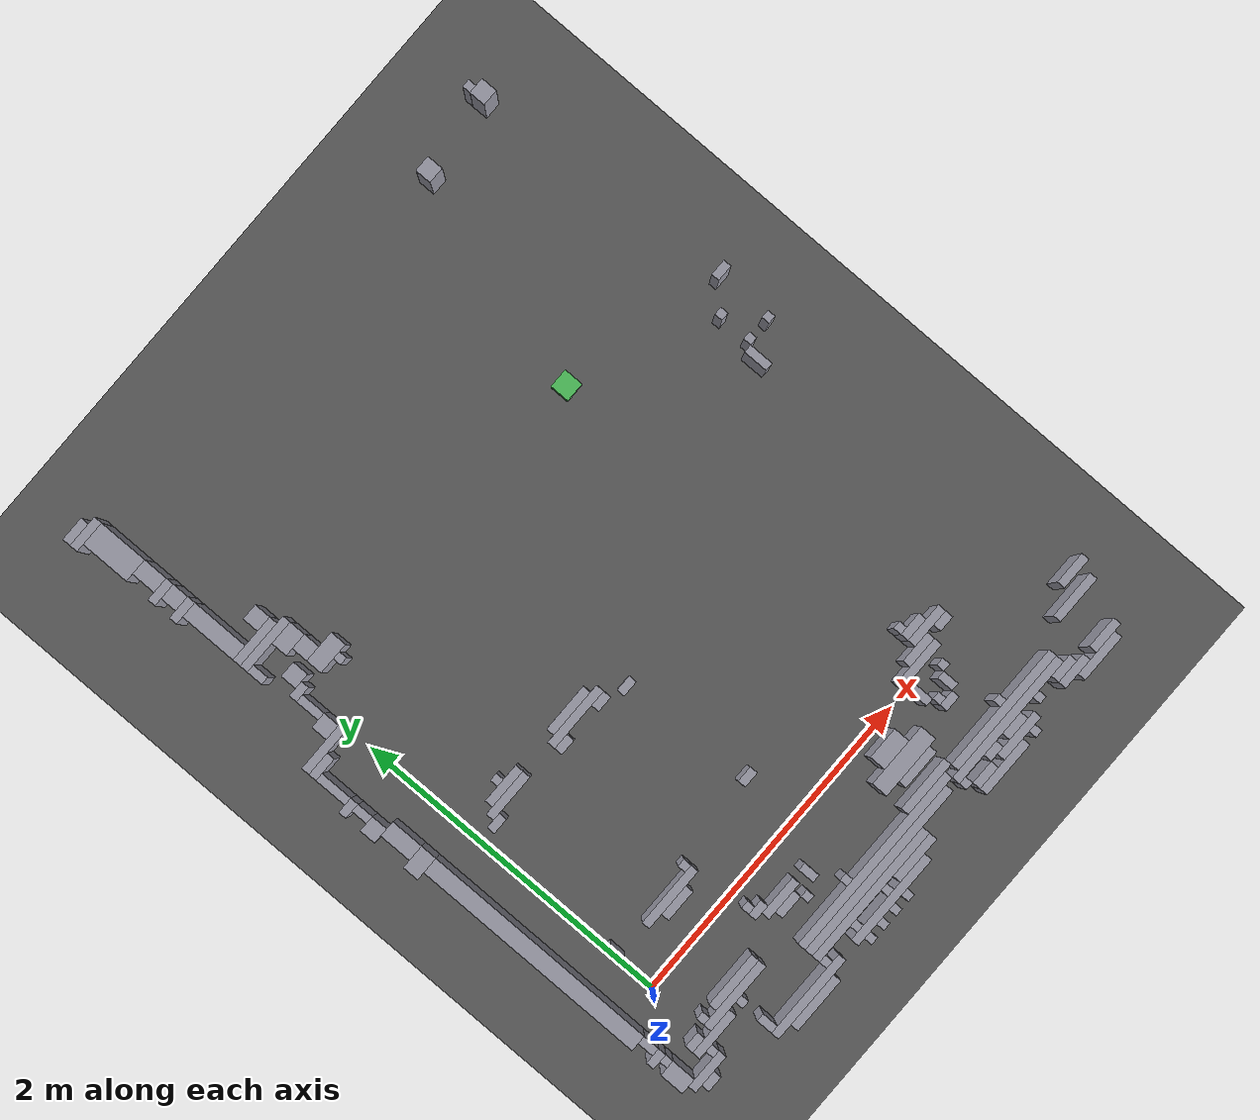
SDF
<sdf version="1.8">
 <world name="dimi">
  <model name="ground">
   <static>true</static>
   <link name="ground_link">
    <collision name="c"><geometry><plane><normal>0 0 1</normal><size>60 60</size></plane></geometry></collision>
    <visual name="v">
     <geometry><plane><normal>0 0 1</normal><size>60 60</size></plane></geometry>
     <material><ambient>0.3 0.3 0.3 1</ambient><diffuse>0.35 0.35 0.35 1</diffuse></material>
    </visual>
   </link>
  </model>
  <model name="walls">
   <static>true</static>
   <link name="wall_468">
    <pose>-0.1220 3.9170 0.5000 0 0 0</pose>
    <collision name="c"><geometry><box><size>0.1500 0.0500 1.0000</size></box></geometry></collision>
    <visual name="v">
     <geometry><box><size>0.1500 0.0500 1.0000</size></box></geometry>
     <material><ambient>0.5 0.5 0.55 1</ambient><diffuse>0.6 0.6 0.65 1</diffuse></material>
    </visual>
   </link>
   <link name="wall_476">
    <pose>-0.0970 3.8670 0.5000 0 0 0</pose>
    <collision name="c"><geometry><box><size>0.2000 0.0500 1.0000</size></box></geometry></collision>
    <visual name="v">
     <geometry><box><size>0.2000 0.0500 1.0000</size></box></geometry>
     <material><ambient>0.5 0.5 0.55 1</ambient><diffuse>0.6 0.6 0.65 1</diffuse></material>
    </visual>
   </link>
   <link name="wall_477">
    <pose>3.0280 3.8670 0.5000 0 0 0</pose>
    <collision name="c"><geometry><box><size>0.0500 0.0500 1.0000</size></box></geometry></collision>
    <visual name="v">
     <geometry><box><size>0.0500 0.0500 1.0000</size></box></geometry>
     <material><ambient>0.5 0.5 0.55 1</ambient><diffuse>0.6 0.6 0.65 1</diffuse></material>
    </visual>
   </link>
   <link name="wall_484">
    <pose>-0.0720 3.6920 0.5000 0 0 0</pose>
    <collision name="c"><geometry><box><size>0.1500 0.3000 1.0000</size></box></geometry></collision>
    <visual name="v">
     <geometry><box><size>0.1500 0.3000 1.0000</size></box></geometry>
     <material><ambient>0.5 0.5 0.55 1</ambient><diffuse>0.6 0.6 0.65 1</diffuse></material>
    </visual>
   </link>
   <link name="wall_485">
    <pose>3.0530 3.7920 0.5000 0 0 0</pose>
    <collision name="c"><geometry><box><size>0.1000 0.1000 1.0000</size></box></geometry></collision>
    <visual name="v">
     <geometry><box><size>0.1000 0.1000 1.0000</size></box></geometry>
     <material><ambient>0.5 0.5 0.55 1</ambient><diffuse>0.6 0.6 0.65 1</diffuse></material>
    </visual>
   </link>
   <link name="wall_490">
    <pose>2.5530 3.7420 0.5000 0 0 0</pose>
    <collision name="c"><geometry><box><size>0.1000 0.1000 1.0000</size></box></geometry></collision>
    <visual name="v">
     <geometry><box><size>0.1000 0.1000 1.0000</size></box></geometry>
     <material><ambient>0.5 0.5 0.55 1</ambient><diffuse>0.6 0.6 0.65 1</diffuse></material>
    </visual>
   </link>
   <link name="wall_511">
    <pose>-0.0470 3.4670 0.5000 0 0 0</pose>
    <collision name="c"><geometry><box><size>0.1000 0.1500 1.0000</size></box></geometry></collision>
    <visual name="v">
     <geometry><box><size>0.1000 0.1500 1.0000</size></box></geometry>
     <material><ambient>0.5 0.5 0.55 1</ambient><diffuse>0.6 0.6 0.65 1</diffuse></material>
    </visual>
   </link>
   <link name="wall_519">
    <pose>-0.0720 3.3670 0.5000 0 0 0</pose>
    <collision name="c"><geometry><box><size>0.1500 0.0500 1.0000</size></box></geometry></collision>
    <visual name="v">
     <geometry><box><size>0.1500 0.0500 1.0000</size></box></geometry>
     <material><ambient>0.5 0.5 0.55 1</ambient><diffuse>0.6 0.6 0.65 1</diffuse></material>
    </visual>
   </link>
   <link name="wall_522">
    <pose>-0.0470 3.2920 0.5000 0 0 0</pose>
    <collision name="c"><geometry><box><size>0.1000 0.1000 1.0000</size></box></geometry></collision>
    <visual name="v">
     <geometry><box><size>0.1000 0.1000 1.0000</size></box></geometry>
     <material><ambient>0.5 0.5 0.55 1</ambient><diffuse>0.6 0.6 0.65 1</diffuse></material>
    </visual>
   </link>
   <link name="wall_529">
    <pose>-0.0720 3.2170 0.5000 0 0 0</pose>
    <collision name="c"><geometry><box><size>0.1500 0.0500 1.0000</size></box></geometry></collision>
    <visual name="v">
     <geometry><box><size>0.1500 0.0500 1.0000</size></box></geometry>
     <material><ambient>0.5 0.5 0.55 1</ambient><diffuse>0.6 0.6 0.65 1</diffuse></material>
    </visual>
   </link>
   <link name="wall_533">
    <pose>-0.0470 3.0170 0.5000 0 0 0</pose>
    <collision name="c"><geometry><box><size>0.1000 0.3500 1.0000</size></box></geometry></collision>
    <visual name="v">
     <geometry><box><size>0.1000 0.3500 1.0000</size></box></geometry>
     <material><ambient>0.5 0.5 0.55 1</ambient><diffuse>0.6 0.6 0.65 1</diffuse></material>
    </visual>
   </link>
   <link name="wall_548">
    <pose>0.1530 2.8920 0.5000 0 0 0</pose>
    <collision name="c"><geometry><box><size>0.1000 0.1000 1.0000</size></box></geometry></collision>
    <visual name="v">
     <geometry><box><size>0.1000 0.1000 1.0000</size></box></geometry>
     <material><ambient>0.5 0.5 0.55 1</ambient><diffuse>0.6 0.6 0.65 1</diffuse></material>
    </visual>
   </link>
   <link name="wall_556">
    <pose>0.0530 2.8170 0.5000 0 0 0</pose>
    <collision name="c"><geometry><box><size>0.3000 0.0500 1.0000</size></box></geometry></collision>
    <visual name="v">
     <geometry><box><size>0.3000 0.0500 1.0000</size></box></geometry>
     <material><ambient>0.5 0.5 0.55 1</ambient><diffuse>0.6 0.6 0.65 1</diffuse></material>
    </visual>
   </link>
   <link name="wall_557">
    <pose>0.0780 2.7670 0.5000 0 0 0</pose>
    <collision name="c"><geometry><box><size>0.3500 0.0500 1.0000</size></box></geometry></collision>
    <visual name="v">
     <geometry><box><size>0.3500 0.0500 1.0000</size></box></geometry>
     <material><ambient>0.5 0.5 0.55 1</ambient><diffuse>0.6 0.6 0.65 1</diffuse></material>
    </visual>
   </link>
   <link name="wall_559">
    <pose>-0.0720 2.6920 0.5000 0 0 0</pose>
    <collision name="c"><geometry><box><size>0.0500 0.1000 1.0000</size></box></geometry></collision>
    <visual name="v">
     <geometry><box><size>0.0500 0.1000 1.0000</size></box></geometry>
     <material><ambient>0.5 0.5 0.55 1</ambient><diffuse>0.6 0.6 0.65 1</diffuse></material>
    </visual>
   </link>
   <link name="wall_560">
    <pose>0.1780 2.6920 0.5000 0 0 0</pose>
    <collision name="c"><geometry><box><size>0.1500 0.1000 1.0000</size></box></geometry></collision>
    <visual name="v">
     <geometry><box><size>0.1500 0.1000 1.0000</size></box></geometry>
     <material><ambient>0.5 0.5 0.55 1</ambient><diffuse>0.6 0.6 0.65 1</diffuse></material>
    </visual>
   </link>
   <link name="wall_562">
    <pose>0.2030 2.5920 0.5000 0 0 0</pose>
    <collision name="c"><geometry><box><size>0.1000 0.1000 1.0000</size></box></geometry></collision>
    <visual name="v">
     <geometry><box><size>0.1000 0.1000 1.0000</size></box></geometry>
     <material><ambient>0.5 0.5 0.55 1</ambient><diffuse>0.6 0.6 0.65 1</diffuse></material>
    </visual>
   </link>
   <link name="wall_565">
    <pose>0.0530 2.5420 0.5000 0 0 0</pose>
    <collision name="c"><geometry><box><size>0.1000 0.1000 1.0000</size></box></geometry></collision>
    <visual name="v">
     <geometry><box><size>0.1000 0.1000 1.0000</size></box></geometry>
     <material><ambient>0.5 0.5 0.55 1</ambient><diffuse>0.6 0.6 0.65 1</diffuse></material>
    </visual>
   </link>
   <link name="wall_567">
    <pose>0.2530 2.4920 0.5000 0 0 0</pose>
    <collision name="c"><geometry><box><size>0.2000 0.1000 1.0000</size></box></geometry></collision>
    <visual name="v">
     <geometry><box><size>0.2000 0.1000 1.0000</size></box></geometry>
     <material><ambient>0.5 0.5 0.55 1</ambient><diffuse>0.6 0.6 0.65 1</diffuse></material>
    </visual>
   </link>
   <link name="wall_570">
    <pose>0.0030 2.4670 0.5000 0 0 0</pose>
    <collision name="c"><geometry><box><size>0.1000 0.0500 1.0000</size></box></geometry></collision>
    <visual name="v">
     <geometry><box><size>0.1000 0.0500 1.0000</size></box></geometry>
     <material><ambient>0.5 0.5 0.55 1</ambient><diffuse>0.6 0.6 0.65 1</diffuse></material>
    </visual>
   </link>
   <link name="wall_573">
    <pose>-0.0220 2.3670 0.5000 0 0 0</pose>
    <collision name="c"><geometry><box><size>0.0500 0.1500 1.0000</size></box></geometry></collision>
    <visual name="v">
     <geometry><box><size>0.0500 0.1500 1.0000</size></box></geometry>
     <material><ambient>0.5 0.5 0.55 1</ambient><diffuse>0.6 0.6 0.65 1</diffuse></material>
    </visual>
   </link>
   <link name="wall_574">
    <pose>0.2780 2.4170 0.5000 0 0 0</pose>
    <collision name="c"><geometry><box><size>0.0500 0.0500 1.0000</size></box></geometry></collision>
    <visual name="v">
     <geometry><box><size>0.0500 0.0500 1.0000</size></box></geometry>
     <material><ambient>0.5 0.5 0.55 1</ambient><diffuse>0.6 0.6 0.65 1</diffuse></material>
    </visual>
   </link>
   <link name="wall_584">
    <pose>-0.0470 2.2420 0.5000 0 0 0</pose>
    <collision name="c"><geometry><box><size>0.1000 0.1000 1.0000</size></box></geometry></collision>
    <visual name="v">
     <geometry><box><size>0.1000 0.1000 1.0000</size></box></geometry>
     <material><ambient>0.5 0.5 0.55 1</ambient><diffuse>0.6 0.6 0.65 1</diffuse></material>
    </visual>
   </link>
   <link name="wall_589">
    <pose>3.1530 2.2170 0.5000 0 0 0</pose>
    <collision name="c"><geometry><box><size>0.1000 0.0500 1.0000</size></box></geometry></collision>
    <visual name="v">
     <geometry><box><size>0.1000 0.0500 1.0000</size></box></geometry>
     <material><ambient>0.5 0.5 0.55 1</ambient><diffuse>0.6 0.6 0.65 1</diffuse></material>
    </visual>
   </link>
   <link name="wall_593">
    <pose>-0.1470 2.1670 0.5000 0 0 0</pose>
    <collision name="c"><geometry><box><size>0.3000 0.0500 1.0000</size></box></geometry></collision>
    <visual name="v">
     <geometry><box><size>0.3000 0.0500 1.0000</size></box></geometry>
     <material><ambient>0.5 0.5 0.55 1</ambient><diffuse>0.6 0.6 0.65 1</diffuse></material>
    </visual>
   </link>
   <link name="wall_597">
    <pose>-0.2220 2.1170 0.5000 0 0 0</pose>
    <collision name="c"><geometry><box><size>0.1500 0.0500 1.0000</size></box></geometry></collision>
    <visual name="v">
     <geometry><box><size>0.1500 0.0500 1.0000</size></box></geometry>
     <material><ambient>0.5 0.5 0.55 1</ambient><diffuse>0.6 0.6 0.65 1</diffuse></material>
    </visual>
   </link>
   <link name="wall_602">
    <pose>-0.2720 1.9920 0.5000 0 0 0</pose>
    <collision name="c"><geometry><box><size>0.0500 0.2000 1.0000</size></box></geometry></collision>
    <visual name="v">
     <geometry><box><size>0.0500 0.2000 1.0000</size></box></geometry>
     <material><ambient>0.5 0.5 0.55 1</ambient><diffuse>0.6 0.6 0.65 1</diffuse></material>
    </visual>
   </link>
   <link name="wall_603">
    <pose>2.9780 2.0670 0.5000 0 0 0</pose>
    <collision name="c"><geometry><box><size>0.0500 0.0500 1.0000</size></box></geometry></collision>
    <visual name="v">
     <geometry><box><size>0.0500 0.0500 1.0000</size></box></geometry>
     <material><ambient>0.5 0.5 0.55 1</ambient><diffuse>0.6 0.6 0.65 1</diffuse></material>
    </visual>
   </link>
   <link name="wall_614">
    <pose>-0.2970 1.8670 0.5000 0 0 0</pose>
    <collision name="c"><geometry><box><size>0.1000 0.0500 1.0000</size></box></geometry></collision>
    <visual name="v">
     <geometry><box><size>0.1000 0.0500 1.0000</size></box></geometry>
     <material><ambient>0.5 0.5 0.55 1</ambient><diffuse>0.6 0.6 0.65 1</diffuse></material>
    </visual>
   </link>
   <link name="wall_615">
    <pose>2.9780 1.8670 0.5000 0 0 0</pose>
    <collision name="c"><geometry><box><size>0.0500 0.0500 1.0000</size></box></geometry></collision>
    <visual name="v">
     <geometry><box><size>0.0500 0.0500 1.0000</size></box></geometry>
     <material><ambient>0.5 0.5 0.55 1</ambient><diffuse>0.6 0.6 0.65 1</diffuse></material>
    </visual>
   </link>
   <link name="wall_616">
    <pose>3.1280 1.8670 0.5000 0 0 0</pose>
    <collision name="c"><geometry><box><size>0.0500 0.0500 1.0000</size></box></geometry></collision>
    <visual name="v">
     <geometry><box><size>0.0500 0.0500 1.0000</size></box></geometry>
     <material><ambient>0.5 0.5 0.55 1</ambient><diffuse>0.6 0.6 0.65 1</diffuse></material>
    </visual>
   </link>
   <link name="wall_618">
    <pose>-0.2720 1.7920 0.5000 0 0 0</pose>
    <collision name="c"><geometry><box><size>0.0500 0.1000 1.0000</size></box></geometry></collision>
    <visual name="v">
     <geometry><box><size>0.0500 0.1000 1.0000</size></box></geometry>
     <material><ambient>0.5 0.5 0.55 1</ambient><diffuse>0.6 0.6 0.65 1</diffuse></material>
    </visual>
   </link>
   <link name="wall_619">
    <pose>2.9280 1.7670 0.5000 0 0 0</pose>
    <collision name="c"><geometry><box><size>0.0500 0.1500 1.0000</size></box></geometry></collision>
    <visual name="v">
     <geometry><box><size>0.0500 0.1500 1.0000</size></box></geometry>
     <material><ambient>0.5 0.5 0.55 1</ambient><diffuse>0.6 0.6 0.65 1</diffuse></material>
    </visual>
   </link>
   <link name="wall_622">
    <pose>-0.2970 1.6920 0.5000 0 0 0</pose>
    <collision name="c"><geometry><box><size>0.1000 0.1000 1.0000</size></box></geometry></collision>
    <visual name="v">
     <geometry><box><size>0.1000 0.1000 1.0000</size></box></geometry>
     <material><ambient>0.5 0.5 0.55 1</ambient><diffuse>0.6 0.6 0.65 1</diffuse></material>
    </visual>
   </link>
   <link name="wall_627">
    <pose>-0.2470 1.5420 0.5000 0 0 0</pose>
    <collision name="c"><geometry><box><size>0.1000 0.2000 1.0000</size></box></geometry></collision>
    <visual name="v">
     <geometry><box><size>0.1000 0.2000 1.0000</size></box></geometry>
     <material><ambient>0.5 0.5 0.55 1</ambient><diffuse>0.6 0.6 0.65 1</diffuse></material>
    </visual>
   </link>
   <link name="wall_638">
    <pose>-0.2720 1.3920 0.5000 0 0 0</pose>
    <collision name="c"><geometry><box><size>0.1500 0.1000 1.0000</size></box></geometry></collision>
    <visual name="v">
     <geometry><box><size>0.1500 0.1000 1.0000</size></box></geometry>
     <material><ambient>0.5 0.5 0.55 1</ambient><diffuse>0.6 0.6 0.65 1</diffuse></material>
    </visual>
   </link>
   <link name="wall_641">
    <pose>0.3280 1.3670 0.5000 0 0 0</pose>
    <collision name="c"><geometry><box><size>0.0500 0.0500 1.0000</size></box></geometry></collision>
    <visual name="v">
     <geometry><box><size>0.0500 0.0500 1.0000</size></box></geometry>
     <material><ambient>0.5 0.5 0.55 1</ambient><diffuse>0.6 0.6 0.65 1</diffuse></material>
    </visual>
   </link>
   <link name="wall_643">
    <pose>-0.2470 0.6170 0.5000 0 0 0</pose>
    <collision name="c"><geometry><box><size>0.1000 1.4500 1.0000</size></box></geometry></collision>
    <visual name="v">
     <geometry><box><size>0.1000 1.4500 1.0000</size></box></geometry>
     <material><ambient>0.5 0.5 0.55 1</ambient><diffuse>0.6 0.6 0.65 1</diffuse></material>
    </visual>
   </link>
   <link name="wall_644">
    <pose>0.3280 1.3170 0.5000 0 0 0</pose>
    <collision name="c"><geometry><box><size>0.2500 0.0500 1.0000</size></box></geometry></collision>
    <visual name="v">
     <geometry><box><size>0.2500 0.0500 1.0000</size></box></geometry>
     <material><ambient>0.5 0.5 0.55 1</ambient><diffuse>0.6 0.6 0.65 1</diffuse></material>
    </visual>
   </link>
   <link name="wall_645">
    <pose>0.8530 1.3170 0.5000 0 0 0</pose>
    <collision name="c"><geometry><box><size>0.3000 0.0500 1.0000</size></box></geometry></collision>
    <visual name="v">
     <geometry><box><size>0.3000 0.0500 1.0000</size></box></geometry>
     <material><ambient>0.5 0.5 0.55 1</ambient><diffuse>0.6 0.6 0.65 1</diffuse></material>
    </visual>
   </link>
   <link name="wall_646">
    <pose>0.3030 1.2670 0.5000 0 0 0</pose>
    <collision name="c"><geometry><box><size>0.3000 0.0500 1.0000</size></box></geometry></collision>
    <visual name="v">
     <geometry><box><size>0.3000 0.0500 1.0000</size></box></geometry>
     <material><ambient>0.5 0.5 0.55 1</ambient><diffuse>0.6 0.6 0.65 1</diffuse></material>
    </visual>
   </link>
   <link name="wall_647">
    <pose>0.8530 1.2670 0.5000 0 0 0</pose>
    <collision name="c"><geometry><box><size>0.4000 0.0500 1.0000</size></box></geometry></collision>
    <visual name="v">
     <geometry><box><size>0.4000 0.0500 1.0000</size></box></geometry>
     <material><ambient>0.5 0.5 0.55 1</ambient><diffuse>0.6 0.6 0.65 1</diffuse></material>
    </visual>
   </link>
   <link name="wall_652">
    <pose>0.1530 1.2170 0.5000 0 0 0</pose>
    <collision name="c"><geometry><box><size>0.1000 0.0500 1.0000</size></box></geometry></collision>
    <visual name="v">
     <geometry><box><size>0.1000 0.0500 1.0000</size></box></geometry>
     <material><ambient>0.5 0.5 0.55 1</ambient><diffuse>0.6 0.6 0.65 1</diffuse></material>
    </visual>
   </link>
   <link name="wall_653">
    <pose>0.7030 1.2170 0.5000 0 0 0</pose>
    <collision name="c"><geometry><box><size>0.1000 0.0500 1.0000</size></box></geometry></collision>
    <visual name="v">
     <geometry><box><size>0.1000 0.0500 1.0000</size></box></geometry>
     <material><ambient>0.5 0.5 0.55 1</ambient><diffuse>0.6 0.6 0.65 1</diffuse></material>
    </visual>
   </link>
   <link name="wall_654">
    <pose>1.0030 1.2170 0.5000 0 0 0</pose>
    <collision name="c"><geometry><box><size>0.1000 0.0500 1.0000</size></box></geometry></collision>
    <visual name="v">
     <geometry><box><size>0.1000 0.0500 1.0000</size></box></geometry>
     <material><ambient>0.5 0.5 0.55 1</ambient><diffuse>0.6 0.6 0.65 1</diffuse></material>
    </visual>
   </link>
   <link name="wall_658">
    <pose>1.1530 1.1670 0.5000 0 0 0</pose>
    <collision name="c"><geometry><box><size>0.1000 0.0500 1.0000</size></box></geometry></collision>
    <visual name="v">
     <geometry><box><size>0.1000 0.0500 1.0000</size></box></geometry>
     <material><ambient>0.5 0.5 0.55 1</ambient><diffuse>0.6 0.6 0.65 1</diffuse></material>
    </visual>
   </link>
   <link name="wall_720">
    <pose>1.2030 0.3670 0.5000 0 0 0</pose>
    <collision name="c"><geometry><box><size>0.1000 0.0500 1.0000</size></box></geometry></collision>
    <visual name="v">
     <geometry><box><size>0.1000 0.0500 1.0000</size></box></geometry>
     <material><ambient>0.5 0.5 0.55 1</ambient><diffuse>0.6 0.6 0.65 1</diffuse></material>
    </visual>
   </link>
   <link name="wall_721">
    <pose>0.0280 0.2920 0.5000 0 0 0</pose>
    <collision name="c"><geometry><box><size>0.0500 0.1000 1.0000</size></box></geometry></collision>
    <visual name="v">
     <geometry><box><size>0.0500 0.1000 1.0000</size></box></geometry>
     <material><ambient>0.5 0.5 0.55 1</ambient><diffuse>0.6 0.6 0.65 1</diffuse></material>
    </visual>
   </link>
   <link name="wall_722">
    <pose>0.6280 0.3170 0.5000 0 0 0</pose>
    <collision name="c"><geometry><box><size>0.0500 0.0500 1.0000</size></box></geometry></collision>
    <visual name="v">
     <geometry><box><size>0.0500 0.0500 1.0000</size></box></geometry>
     <material><ambient>0.5 0.5 0.55 1</ambient><diffuse>0.6 0.6 0.65 1</diffuse></material>
    </visual>
   </link>
   <link name="wall_723">
    <pose>0.4530 0.2670 0.5000 0 0 0</pose>
    <collision name="c"><geometry><box><size>0.4000 0.0500 1.0000</size></box></geometry></collision>
    <visual name="v">
     <geometry><box><size>0.4000 0.0500 1.0000</size></box></geometry>
     <material><ambient>0.5 0.5 0.55 1</ambient><diffuse>0.6 0.6 0.65 1</diffuse></material>
    </visual>
   </link>
   <link name="wall_724">
    <pose>2.3280 0.2670 0.5000 0 0 0</pose>
    <collision name="c"><geometry><box><size>0.0500 0.0500 1.0000</size></box></geometry></collision>
    <visual name="v">
     <geometry><box><size>0.0500 0.0500 1.0000</size></box></geometry>
     <material><ambient>0.5 0.5 0.55 1</ambient><diffuse>0.6 0.6 0.65 1</diffuse></material>
    </visual>
   </link>
   <link name="wall_725">
    <pose>0.4530 0.2170 0.5000 0 0 0</pose>
    <collision name="c"><geometry><box><size>0.2000 0.0500 1.0000</size></box></geometry></collision>
    <visual name="v">
     <geometry><box><size>0.2000 0.0500 1.0000</size></box></geometry>
     <material><ambient>0.5 0.5 0.55 1</ambient><diffuse>0.6 0.6 0.65 1</diffuse></material>
    </visual>
   </link>
   <link name="wall_726">
    <pose>2.3780 0.2170 0.5000 0 0 0</pose>
    <collision name="c"><geometry><box><size>0.1500 0.0500 1.0000</size></box></geometry></collision>
    <visual name="v">
     <geometry><box><size>0.1500 0.0500 1.0000</size></box></geometry>
     <material><ambient>0.5 0.5 0.55 1</ambient><diffuse>0.6 0.6 0.65 1</diffuse></material>
    </visual>
   </link>
   <link name="wall_727">
    <pose>2.4280 0.1670 0.5000 0 0 0</pose>
    <collision name="c"><geometry><box><size>0.2500 0.0500 1.0000</size></box></geometry></collision>
    <visual name="v">
     <geometry><box><size>0.2500 0.0500 1.0000</size></box></geometry>
     <material><ambient>0.5 0.5 0.55 1</ambient><diffuse>0.6 0.6 0.65 1</diffuse></material>
    </visual>
   </link>
   <link name="wall_728">
    <pose>2.3030 0.1170 0.5000 0 0 0</pose>
    <collision name="c"><geometry><box><size>0.2000 0.0500 1.0000</size></box></geometry></collision>
    <visual name="v">
     <geometry><box><size>0.2000 0.0500 1.0000</size></box></geometry>
     <material><ambient>0.5 0.5 0.55 1</ambient><diffuse>0.6 0.6 0.65 1</diffuse></material>
    </visual>
   </link>
   <link name="wall_729">
    <pose>2.5030 0.1170 0.5000 0 0 0</pose>
    <collision name="c"><geometry><box><size>0.1000 0.0500 1.0000</size></box></geometry></collision>
    <visual name="v">
     <geometry><box><size>0.1000 0.0500 1.0000</size></box></geometry>
     <material><ambient>0.5 0.5 0.55 1</ambient><diffuse>0.6 0.6 0.65 1</diffuse></material>
    </visual>
   </link>
   <link name="wall_731">
    <pose>2.2530 0.0670 0.5000 0 0 0</pose>
    <collision name="c"><geometry><box><size>0.3000 0.0500 1.0000</size></box></geometry></collision>
    <visual name="v">
     <geometry><box><size>0.3000 0.0500 1.0000</size></box></geometry>
     <material><ambient>0.5 0.5 0.55 1</ambient><diffuse>0.6 0.6 0.65 1</diffuse></material>
    </visual>
   </link>
   <link name="wall_732">
    <pose>2.1280 -0.0330 0.5000 0 0 0</pose>
    <collision name="c"><geometry><box><size>0.0500 0.1500 1.0000</size></box></geometry></collision>
    <visual name="v">
     <geometry><box><size>0.0500 0.1500 1.0000</size></box></geometry>
     <material><ambient>0.5 0.5 0.55 1</ambient><diffuse>0.6 0.6 0.65 1</diffuse></material>
    </visual>
   </link>
   <link name="wall_733">
    <pose>2.3280 -0.0330 0.5000 0 0 0</pose>
    <collision name="c"><geometry><box><size>0.0500 0.0500 1.0000</size></box></geometry></collision>
    <visual name="v">
     <geometry><box><size>0.0500 0.0500 1.0000</size></box></geometry>
     <material><ambient>0.5 0.5 0.55 1</ambient><diffuse>0.6 0.6 0.65 1</diffuse></material>
    </visual>
   </link>
   <link name="wall_734">
    <pose>0.6780 -0.0830 0.5000 0 0 0</pose>
    <collision name="c"><geometry><box><size>0.0500 0.0500 1.0000</size></box></geometry></collision>
    <visual name="v">
     <geometry><box><size>0.0500 0.0500 1.0000</size></box></geometry>
     <material><ambient>0.5 0.5 0.55 1</ambient><diffuse>0.6 0.6 0.65 1</diffuse></material>
    </visual>
   </link>
   <link name="wall_735">
    <pose>1.8030 -0.1080 0.5000 0 0 0</pose>
    <collision name="c"><geometry><box><size>0.2000 0.1000 1.0000</size></box></geometry></collision>
    <visual name="v">
     <geometry><box><size>0.2000 0.1000 1.0000</size></box></geometry>
     <material><ambient>0.5 0.5 0.55 1</ambient><diffuse>0.6 0.6 0.65 1</diffuse></material>
    </visual>
   </link>
   <link name="wall_736">
    <pose>2.2780 -0.1080 0.5000 0 0 0</pose>
    <collision name="c"><geometry><box><size>0.0500 0.1000 1.0000</size></box></geometry></collision>
    <visual name="v">
     <geometry><box><size>0.0500 0.1000 1.0000</size></box></geometry>
     <material><ambient>0.5 0.5 0.55 1</ambient><diffuse>0.6 0.6 0.65 1</diffuse></material>
    </visual>
   </link>
   <link name="wall_738">
    <pose>-0.2220 -0.1580 0.5000 0 0 0</pose>
    <collision name="c"><geometry><box><size>0.0500 0.1000 1.0000</size></box></geometry></collision>
    <visual name="v">
     <geometry><box><size>0.0500 0.1000 1.0000</size></box></geometry>
     <material><ambient>0.5 0.5 0.55 1</ambient><diffuse>0.6 0.6 0.65 1</diffuse></material>
    </visual>
   </link>
   <link name="wall_739">
    <pose>0.7030 -0.1330 0.5000 0 0 0</pose>
    <collision name="c"><geometry><box><size>0.1000 0.0500 1.0000</size></box></geometry></collision>
    <visual name="v">
     <geometry><box><size>0.1000 0.0500 1.0000</size></box></geometry>
     <material><ambient>0.5 0.5 0.55 1</ambient><diffuse>0.6 0.6 0.65 1</diffuse></material>
    </visual>
   </link>
   <link name="wall_740">
    <pose>2.1780 -0.1330 0.5000 0 0 0</pose>
    <collision name="c"><geometry><box><size>0.0500 0.0500 1.0000</size></box></geometry></collision>
    <visual name="v">
     <geometry><box><size>0.0500 0.0500 1.0000</size></box></geometry>
     <material><ambient>0.5 0.5 0.55 1</ambient><diffuse>0.6 0.6 0.65 1</diffuse></material>
    </visual>
   </link>
   <link name="wall_742">
    <pose>0.8280 -0.1830 0.5000 0 0 0</pose>
    <collision name="c"><geometry><box><size>0.2500 0.0500 1.0000</size></box></geometry></collision>
    <visual name="v">
     <geometry><box><size>0.2500 0.0500 1.0000</size></box></geometry>
     <material><ambient>0.5 0.5 0.55 1</ambient><diffuse>0.6 0.6 0.65 1</diffuse></material>
    </visual>
   </link>
   <link name="wall_743">
    <pose>1.0280 -0.2080 0.5000 0 0 0</pose>
    <collision name="c"><geometry><box><size>0.0500 0.1000 1.0000</size></box></geometry></collision>
    <visual name="v">
     <geometry><box><size>0.0500 0.1000 1.0000</size></box></geometry>
     <material><ambient>0.5 0.5 0.55 1</ambient><diffuse>0.6 0.6 0.65 1</diffuse></material>
    </visual>
   </link>
   <link name="wall_744">
    <pose>1.8030 -0.2080 0.5000 0 0 0</pose>
    <collision name="c"><geometry><box><size>0.4000 0.1000 1.0000</size></box></geometry></collision>
    <visual name="v">
     <geometry><box><size>0.4000 0.1000 1.0000</size></box></geometry>
     <material><ambient>0.5 0.5 0.55 1</ambient><diffuse>0.6 0.6 0.65 1</diffuse></material>
    </visual>
   </link>
   <link name="wall_745">
    <pose>2.2030 -0.1830 0.5000 0 0 0</pose>
    <collision name="c"><geometry><box><size>0.1000 0.0500 1.0000</size></box></geometry></collision>
    <visual name="v">
     <geometry><box><size>0.1000 0.0500 1.0000</size></box></geometry>
     <material><ambient>0.5 0.5 0.55 1</ambient><diffuse>0.6 0.6 0.65 1</diffuse></material>
    </visual>
   </link>
   <link name="wall_749">
    <pose>-0.2470 -0.2330 0.5000 0 0 0</pose>
    <collision name="c"><geometry><box><size>0.1000 0.0500 1.0000</size></box></geometry></collision>
    <visual name="v">
     <geometry><box><size>0.1000 0.0500 1.0000</size></box></geometry>
     <material><ambient>0.5 0.5 0.55 1</ambient><diffuse>0.6 0.6 0.65 1</diffuse></material>
    </visual>
   </link>
   <link name="wall_750">
    <pose>0.8280 -0.2330 0.5000 0 0 0</pose>
    <collision name="c"><geometry><box><size>0.1500 0.0500 1.0000</size></box></geometry></collision>
    <visual name="v">
     <geometry><box><size>0.1500 0.0500 1.0000</size></box></geometry>
     <material><ambient>0.5 0.5 0.55 1</ambient><diffuse>0.6 0.6 0.65 1</diffuse></material>
    </visual>
   </link>
   <link name="wall_751">
    <pose>3.1530 -0.2330 0.5000 0 0 0</pose>
    <collision name="c"><geometry><box><size>0.2000 0.0500 1.0000</size></box></geometry></collision>
    <visual name="v">
     <geometry><box><size>0.2000 0.0500 1.0000</size></box></geometry>
     <material><ambient>0.5 0.5 0.55 1</ambient><diffuse>0.6 0.6 0.65 1</diffuse></material>
    </visual>
   </link>
   <link name="wall_754">
    <pose>-0.2220 -0.2830 0.5000 0 0 0</pose>
    <collision name="c"><geometry><box><size>0.0500 0.0500 1.0000</size></box></geometry></collision>
    <visual name="v">
     <geometry><box><size>0.0500 0.0500 1.0000</size></box></geometry>
     <material><ambient>0.5 0.5 0.55 1</ambient><diffuse>0.6 0.6 0.65 1</diffuse></material>
    </visual>
   </link>
   <link name="wall_755">
    <pose>0.0780 -0.2830 0.5000 0 0 0</pose>
    <collision name="c"><geometry><box><size>0.0500 0.0500 1.0000</size></box></geometry></collision>
    <visual name="v">
     <geometry><box><size>0.0500 0.0500 1.0000</size></box></geometry>
     <material><ambient>0.5 0.5 0.55 1</ambient><diffuse>0.6 0.6 0.65 1</diffuse></material>
    </visual>
   </link>
   <link name="wall_756">
    <pose>0.3280 -0.2830 0.5000 0 0 0</pose>
    <collision name="c"><geometry><box><size>0.3500 0.0500 1.0000</size></box></geometry></collision>
    <visual name="v">
     <geometry><box><size>0.3500 0.0500 1.0000</size></box></geometry>
     <material><ambient>0.5 0.5 0.55 1</ambient><diffuse>0.6 0.6 0.65 1</diffuse></material>
    </visual>
   </link>
   <link name="wall_757">
    <pose>0.9280 -0.2830 0.5000 0 0 0</pose>
    <collision name="c"><geometry><box><size>0.0500 0.0500 1.0000</size></box></geometry></collision>
    <visual name="v">
     <geometry><box><size>0.0500 0.0500 1.0000</size></box></geometry>
     <material><ambient>0.5 0.5 0.55 1</ambient><diffuse>0.6 0.6 0.65 1</diffuse></material>
    </visual>
   </link>
   <link name="wall_758">
    <pose>1.8280 -0.2830 0.5000 0 0 0</pose>
    <collision name="c"><geometry><box><size>0.2500 0.0500 1.0000</size></box></geometry></collision>
    <visual name="v">
     <geometry><box><size>0.2500 0.0500 1.0000</size></box></geometry>
     <material><ambient>0.5 0.5 0.55 1</ambient><diffuse>0.6 0.6 0.65 1</diffuse></material>
    </visual>
   </link>
   <link name="wall_767">
    <pose>-0.2470 -0.3830 0.5000 0 0 0</pose>
    <collision name="c"><geometry><box><size>0.1000 0.1500 1.0000</size></box></geometry></collision>
    <visual name="v">
     <geometry><box><size>0.1000 0.1500 1.0000</size></box></geometry>
     <material><ambient>0.5 0.5 0.55 1</ambient><diffuse>0.6 0.6 0.65 1</diffuse></material>
    </visual>
   </link>
   <link name="wall_768">
    <pose>-0.0470 -0.3330 0.5000 0 0 0</pose>
    <collision name="c"><geometry><box><size>0.1000 0.0500 1.0000</size></box></geometry></collision>
    <visual name="v">
     <geometry><box><size>0.1000 0.0500 1.0000</size></box></geometry>
     <material><ambient>0.5 0.5 0.55 1</ambient><diffuse>0.6 0.6 0.65 1</diffuse></material>
    </visual>
   </link>
   <link name="wall_769">
    <pose>0.2780 -0.3330 0.5000 0 0 0</pose>
    <collision name="c"><geometry><box><size>0.4500 0.0500 1.0000</size></box></geometry></collision>
    <visual name="v">
     <geometry><box><size>0.4500 0.0500 1.0000</size></box></geometry>
     <material><ambient>0.5 0.5 0.55 1</ambient><diffuse>0.6 0.6 0.65 1</diffuse></material>
    </visual>
   </link>
   <link name="wall_770">
    <pose>3.0530 -0.3330 0.5000 0 0 0</pose>
    <collision name="c"><geometry><box><size>0.3000 0.0500 1.0000</size></box></geometry></collision>
    <visual name="v">
     <geometry><box><size>0.3000 0.0500 1.0000</size></box></geometry>
     <material><ambient>0.5 0.5 0.55 1</ambient><diffuse>0.6 0.6 0.65 1</diffuse></material>
    </visual>
   </link>
   <link name="wall_775">
    <pose>0.0530 -0.3830 0.5000 0 0 0</pose>
    <collision name="c"><geometry><box><size>0.3000 0.0500 1.0000</size></box></geometry></collision>
    <visual name="v">
     <geometry><box><size>0.3000 0.0500 1.0000</size></box></geometry>
     <material><ambient>0.5 0.5 0.55 1</ambient><diffuse>0.6 0.6 0.65 1</diffuse></material>
    </visual>
   </link>
   <link name="wall_776">
    <pose>0.2780 -0.3830 0.5000 0 0 0</pose>
    <collision name="c"><geometry><box><size>0.0500 0.0500 1.0000</size></box></geometry></collision>
    <visual name="v">
     <geometry><box><size>0.0500 0.0500 1.0000</size></box></geometry>
     <material><ambient>0.5 0.5 0.55 1</ambient><diffuse>0.6 0.6 0.65 1</diffuse></material>
    </visual>
   </link>
   <link name="wall_777">
    <pose>1.1280 -0.3830 0.5000 0 0 0</pose>
    <collision name="c"><geometry><box><size>0.0500 0.0500 1.0000</size></box></geometry></collision>
    <visual name="v">
     <geometry><box><size>0.0500 0.0500 1.0000</size></box></geometry>
     <material><ambient>0.5 0.5 0.55 1</ambient><diffuse>0.6 0.6 0.65 1</diffuse></material>
    </visual>
   </link>
   <link name="wall_778">
    <pose>1.7780 -0.3830 0.5000 0 0 0</pose>
    <collision name="c"><geometry><box><size>0.3500 0.0500 1.0000</size></box></geometry></collision>
    <visual name="v">
     <geometry><box><size>0.3500 0.0500 1.0000</size></box></geometry>
     <material><ambient>0.5 0.5 0.55 1</ambient><diffuse>0.6 0.6 0.65 1</diffuse></material>
    </visual>
   </link>
   <link name="wall_779">
    <pose>2.3780 -0.3830 0.5000 0 0 0</pose>
    <collision name="c"><geometry><box><size>0.0500 0.0500 1.0000</size></box></geometry></collision>
    <visual name="v">
     <geometry><box><size>0.0500 0.0500 1.0000</size></box></geometry>
     <material><ambient>0.5 0.5 0.55 1</ambient><diffuse>0.6 0.6 0.65 1</diffuse></material>
    </visual>
   </link>
   <link name="wall_784">
    <pose>-0.0220 -0.4330 0.5000 0 0 0</pose>
    <collision name="c"><geometry><box><size>0.0500 0.0500 1.0000</size></box></geometry></collision>
    <visual name="v">
     <geometry><box><size>0.0500 0.0500 1.0000</size></box></geometry>
     <material><ambient>0.5 0.5 0.55 1</ambient><diffuse>0.6 0.6 0.65 1</diffuse></material>
    </visual>
   </link>
   <link name="wall_785">
    <pose>1.3030 -0.4330 0.5000 0 0 0</pose>
    <collision name="c"><geometry><box><size>1.2000 0.0500 1.0000</size></box></geometry></collision>
    <visual name="v">
     <geometry><box><size>1.2000 0.0500 1.0000</size></box></geometry>
     <material><ambient>0.5 0.5 0.55 1</ambient><diffuse>0.6 0.6 0.65 1</diffuse></material>
    </visual>
   </link>
   <link name="wall_786">
    <pose>2.3530 -0.4330 0.5000 0 0 0</pose>
    <collision name="c"><geometry><box><size>0.8000 0.0500 1.0000</size></box></geometry></collision>
    <visual name="v">
     <geometry><box><size>0.8000 0.0500 1.0000</size></box></geometry>
     <material><ambient>0.5 0.5 0.55 1</ambient><diffuse>0.6 0.6 0.65 1</diffuse></material>
    </visual>
   </link>
   <link name="wall_788">
    <pose>-0.1220 -0.4830 0.5000 0 0 0</pose>
    <collision name="c"><geometry><box><size>0.2500 0.0500 1.0000</size></box></geometry></collision>
    <visual name="v">
     <geometry><box><size>0.2500 0.0500 1.0000</size></box></geometry>
     <material><ambient>0.5 0.5 0.55 1</ambient><diffuse>0.6 0.6 0.65 1</diffuse></material>
    </visual>
   </link>
   <link name="wall_789">
    <pose>1.2780 -0.4830 0.5000 0 0 0</pose>
    <collision name="c"><geometry><box><size>1.1500 0.0500 1.0000</size></box></geometry></collision>
    <visual name="v">
     <geometry><box><size>1.1500 0.0500 1.0000</size></box></geometry>
     <material><ambient>0.5 0.5 0.55 1</ambient><diffuse>0.6 0.6 0.65 1</diffuse></material>
    </visual>
   </link>
   <link name="wall_790">
    <pose>2.3280 -0.4830 0.5000 0 0 0</pose>
    <collision name="c"><geometry><box><size>0.8500 0.0500 1.0000</size></box></geometry></collision>
    <visual name="v">
     <geometry><box><size>0.8500 0.0500 1.0000</size></box></geometry>
     <material><ambient>0.5 0.5 0.55 1</ambient><diffuse>0.6 0.6 0.65 1</diffuse></material>
    </visual>
   </link>
   <link name="wall_795">
    <pose>-0.1470 -0.5330 0.5000 0 0 0</pose>
    <collision name="c"><geometry><box><size>0.1000 0.0500 1.0000</size></box></geometry></collision>
    <visual name="v">
     <geometry><box><size>0.1000 0.0500 1.0000</size></box></geometry>
     <material><ambient>0.5 0.5 0.55 1</ambient><diffuse>0.6 0.6 0.65 1</diffuse></material>
    </visual>
   </link>
   <link name="wall_796">
    <pose>0.2780 -0.5580 0.5000 0 0 0</pose>
    <collision name="c"><geometry><box><size>0.0500 0.1000 1.0000</size></box></geometry></collision>
    <visual name="v">
     <geometry><box><size>0.0500 0.1000 1.0000</size></box></geometry>
     <material><ambient>0.5 0.5 0.55 1</ambient><diffuse>0.6 0.6 0.65 1</diffuse></material>
    </visual>
   </link>
   <link name="wall_797">
    <pose>1.1530 -0.5330 0.5000 0 0 0</pose>
    <collision name="c"><geometry><box><size>0.9000 0.0500 1.0000</size></box></geometry></collision>
    <visual name="v">
     <geometry><box><size>0.9000 0.0500 1.0000</size></box></geometry>
     <material><ambient>0.5 0.5 0.55 1</ambient><diffuse>0.6 0.6 0.65 1</diffuse></material>
    </visual>
   </link>
   <link name="wall_798">
    <pose>1.9280 -0.5330 0.5000 0 0 0</pose>
    <collision name="c"><geometry><box><size>0.0500 0.0500 1.0000</size></box></geometry></collision>
    <visual name="v">
     <geometry><box><size>0.0500 0.0500 1.0000</size></box></geometry>
     <material><ambient>0.5 0.5 0.55 1</ambient><diffuse>0.6 0.6 0.65 1</diffuse></material>
    </visual>
   </link>
   <link name="wall_799">
    <pose>2.1530 -0.5330 0.5000 0 0 0</pose>
    <collision name="c"><geometry><box><size>0.1000 0.0500 1.0000</size></box></geometry></collision>
    <visual name="v">
     <geometry><box><size>0.1000 0.0500 1.0000</size></box></geometry>
     <material><ambient>0.5 0.5 0.55 1</ambient><diffuse>0.6 0.6 0.65 1</diffuse></material>
    </visual>
   </link>
   <link name="wall_800">
    <pose>2.3280 -0.5330 0.5000 0 0 0</pose>
    <collision name="c"><geometry><box><size>0.1500 0.0500 1.0000</size></box></geometry></collision>
    <visual name="v">
     <geometry><box><size>0.1500 0.0500 1.0000</size></box></geometry>
     <material><ambient>0.5 0.5 0.55 1</ambient><diffuse>0.6 0.6 0.65 1</diffuse></material>
    </visual>
   </link>
   <link name="wall_801">
    <pose>2.5280 -0.5330 0.5000 0 0 0</pose>
    <collision name="c"><geometry><box><size>0.0500 0.0500 1.0000</size></box></geometry></collision>
    <visual name="v">
     <geometry><box><size>0.0500 0.0500 1.0000</size></box></geometry>
     <material><ambient>0.5 0.5 0.55 1</ambient><diffuse>0.6 0.6 0.65 1</diffuse></material>
    </visual>
   </link>
   <link name="wall_802">
    <pose>2.7280 -0.5330 0.5000 0 0 0</pose>
    <collision name="c"><geometry><box><size>0.1500 0.0500 1.0000</size></box></geometry></collision>
    <visual name="v">
     <geometry><box><size>0.1500 0.0500 1.0000</size></box></geometry>
     <material><ambient>0.5 0.5 0.55 1</ambient><diffuse>0.6 0.6 0.65 1</diffuse></material>
    </visual>
   </link>
   <link name="wall_803">
    <pose>0.7280 -0.5830 0.5000 0 0 0</pose>
    <collision name="c"><geometry><box><size>0.0500 0.0500 1.0000</size></box></geometry></collision>
    <visual name="v">
     <geometry><box><size>0.0500 0.0500 1.0000</size></box></geometry>
     <material><ambient>0.5 0.5 0.55 1</ambient><diffuse>0.6 0.6 0.65 1</diffuse></material>
    </visual>
   </link>
   <link name="wall_804">
    <pose>0.9780 -0.5830 0.5000 0 0 0</pose>
    <collision name="c"><geometry><box><size>0.0500 0.0500 1.0000</size></box></geometry></collision>
    <visual name="v">
     <geometry><box><size>0.0500 0.0500 1.0000</size></box></geometry>
     <material><ambient>0.5 0.5 0.55 1</ambient><diffuse>0.6 0.6 0.65 1</diffuse></material>
    </visual>
   </link>
   <link name="wall_805">
    <pose>1.2280 -0.5830 0.5000 0 0 0</pose>
    <collision name="c"><geometry><box><size>0.0500 0.0500 1.0000</size></box></geometry></collision>
    <visual name="v">
     <geometry><box><size>0.0500 0.0500 1.0000</size></box></geometry>
     <material><ambient>0.5 0.5 0.55 1</ambient><diffuse>0.6 0.6 0.65 1</diffuse></material>
    </visual>
   </link>
   <link name="wall_806">
    <pose>1.4530 -0.5830 0.5000 0 0 0</pose>
    <collision name="c"><geometry><box><size>0.3000 0.0500 1.0000</size></box></geometry></collision>
    <visual name="v">
     <geometry><box><size>0.3000 0.0500 1.0000</size></box></geometry>
     <material><ambient>0.5 0.5 0.55 1</ambient><diffuse>0.6 0.6 0.65 1</diffuse></material>
    </visual>
   </link>
   <link name="wall_807">
    <pose>2.0280 -0.5830 0.5000 0 0 0</pose>
    <collision name="c"><geometry><box><size>0.1500 0.0500 1.0000</size></box></geometry></collision>
    <visual name="v">
     <geometry><box><size>0.1500 0.0500 1.0000</size></box></geometry>
     <material><ambient>0.5 0.5 0.55 1</ambient><diffuse>0.6 0.6 0.65 1</diffuse></material>
    </visual>
   </link>
   <link name="wall_808">
    <pose>2.3030 -0.5830 0.5000 0 0 0</pose>
    <collision name="c"><geometry><box><size>0.3000 0.0500 1.0000</size></box></geometry></collision>
    <visual name="v">
     <geometry><box><size>0.3000 0.0500 1.0000</size></box></geometry>
     <material><ambient>0.5 0.5 0.55 1</ambient><diffuse>0.6 0.6 0.65 1</diffuse></material>
    </visual>
   </link>
   <link name="wall_809">
    <pose>2.7530 -0.5830 0.5000 0 0 0</pose>
    <collision name="c"><geometry><box><size>0.2000 0.0500 1.0000</size></box></geometry></collision>
    <visual name="v">
     <geometry><box><size>0.2000 0.0500 1.0000</size></box></geometry>
     <material><ambient>0.5 0.5 0.55 1</ambient><diffuse>0.6 0.6 0.65 1</diffuse></material>
    </visual>
   </link>
   <link name="wall_810">
    <pose>3.0030 -0.5830 0.5000 0 0 0</pose>
    <collision name="c"><geometry><box><size>0.2000 0.0500 1.0000</size></box></geometry></collision>
    <visual name="v">
     <geometry><box><size>0.2000 0.0500 1.0000</size></box></geometry>
     <material><ambient>0.5 0.5 0.55 1</ambient><diffuse>0.6 0.6 0.65 1</diffuse></material>
    </visual>
   </link>
   <link name="wall_811">
    <pose>0.5280 -0.6330 0.5000 0 0 0</pose>
    <collision name="c"><geometry><box><size>0.5500 0.0500 1.0000</size></box></geometry></collision>
    <visual name="v">
     <geometry><box><size>0.5500 0.0500 1.0000</size></box></geometry>
     <material><ambient>0.5 0.5 0.55 1</ambient><diffuse>0.6 0.6 0.65 1</diffuse></material>
    </visual>
   </link>
   <link name="wall_812">
    <pose>1.2030 -0.6330 0.5000 0 0 0</pose>
    <collision name="c"><geometry><box><size>0.6000 0.0500 1.0000</size></box></geometry></collision>
    <visual name="v">
     <geometry><box><size>0.6000 0.0500 1.0000</size></box></geometry>
     <material><ambient>0.5 0.5 0.55 1</ambient><diffuse>0.6 0.6 0.65 1</diffuse></material>
    </visual>
   </link>
   <link name="wall_813">
    <pose>2.1280 -0.6330 0.5000 0 0 0</pose>
    <collision name="c"><geometry><box><size>0.3500 0.0500 1.0000</size></box></geometry></collision>
    <visual name="v">
     <geometry><box><size>0.3500 0.0500 1.0000</size></box></geometry>
     <material><ambient>0.5 0.5 0.55 1</ambient><diffuse>0.6 0.6 0.65 1</diffuse></material>
    </visual>
   </link>
   <link name="wall_814">
    <pose>2.3780 -0.6330 0.5000 0 0 0</pose>
    <collision name="c"><geometry><box><size>0.0500 0.0500 1.0000</size></box></geometry></collision>
    <visual name="v">
     <geometry><box><size>0.0500 0.0500 1.0000</size></box></geometry>
     <material><ambient>0.5 0.5 0.55 1</ambient><diffuse>0.6 0.6 0.65 1</diffuse></material>
    </visual>
   </link>
   <link name="wall_815">
    <pose>2.9030 -0.6330 0.5000 0 0 0</pose>
    <collision name="c"><geometry><box><size>0.3000 0.0500 1.0000</size></box></geometry></collision>
    <visual name="v">
     <geometry><box><size>0.3000 0.0500 1.0000</size></box></geometry>
     <material><ambient>0.5 0.5 0.55 1</ambient><diffuse>0.6 0.6 0.65 1</diffuse></material>
    </visual>
   </link>
   <link name="wall_816">
    <pose>0.5280 -0.6830 0.5000 0 0 0</pose>
    <collision name="c"><geometry><box><size>0.3500 0.0500 1.0000</size></box></geometry></collision>
    <visual name="v">
     <geometry><box><size>0.3500 0.0500 1.0000</size></box></geometry>
     <material><ambient>0.5 0.5 0.55 1</ambient><diffuse>0.6 0.6 0.65 1</diffuse></material>
    </visual>
   </link>
   <link name="wall_817">
    <pose>0.9780 -0.6830 0.5000 0 0 0</pose>
    <collision name="c"><geometry><box><size>0.0500 0.0500 1.0000</size></box></geometry></collision>
    <visual name="v">
     <geometry><box><size>0.0500 0.0500 1.0000</size></box></geometry>
     <material><ambient>0.5 0.5 0.55 1</ambient><diffuse>0.6 0.6 0.65 1</diffuse></material>
    </visual>
   </link>
   <link name="wall_818">
    <pose>1.0780 -0.6830 0.5000 0 0 0</pose>
    <collision name="c"><geometry><box><size>0.0500 0.0500 1.0000</size></box></geometry></collision>
    <visual name="v">
     <geometry><box><size>0.0500 0.0500 1.0000</size></box></geometry>
     <material><ambient>0.5 0.5 0.55 1</ambient><diffuse>0.6 0.6 0.65 1</diffuse></material>
    </visual>
   </link>
   <link name="wall_819">
    <pose>1.1780 -0.6830 0.5000 0 0 0</pose>
    <collision name="c"><geometry><box><size>0.0500 0.0500 1.0000</size></box></geometry></collision>
    <visual name="v">
     <geometry><box><size>0.0500 0.0500 1.0000</size></box></geometry>
     <material><ambient>0.5 0.5 0.55 1</ambient><diffuse>0.6 0.6 0.65 1</diffuse></material>
    </visual>
   </link>
   <link name="wall_820">
    <pose>1.2780 -0.6830 0.5000 0 0 0</pose>
    <collision name="c"><geometry><box><size>0.0500 0.0500 1.0000</size></box></geometry></collision>
    <visual name="v">
     <geometry><box><size>0.0500 0.0500 1.0000</size></box></geometry>
     <material><ambient>0.5 0.5 0.55 1</ambient><diffuse>0.6 0.6 0.65 1</diffuse></material>
    </visual>
   </link>
  </model>
  <model name="remote">
   <static>true</static>
   <pose>2.1780 2.4670 0.0900 0 0 0</pose>
   <link name="link">
    <visual name="v">
     <geometry><box><size>0.12 0.12 0.18</size></box></geometry>
     <material><ambient>0.3 0.75 0.35 1</ambient><diffuse>0.3 0.75 0.35 1</diffuse></material>
    </visual>
   </link>
  </model>
 </world>
</sdf>
